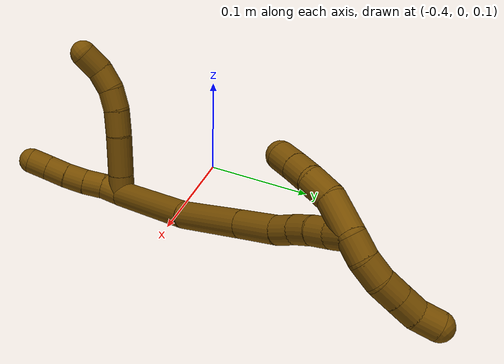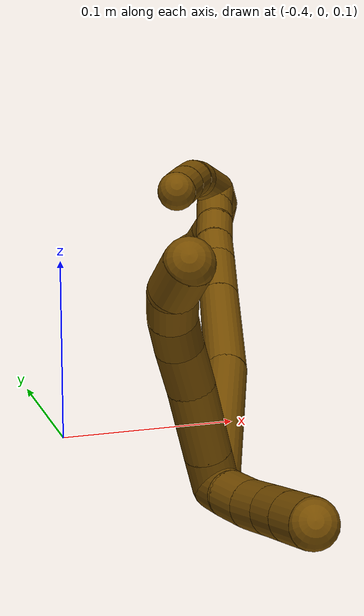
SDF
<sdf version="1.7">
 <world name="default">
  <model name="12">
   <static>0</static>
   <link name="12">
    <collision name="collision-cylinder-e_1_2_8">
     <pose>-0.002297 0.007628 0.007002 -0.828193 -0.218302 0.096254</pose>
     <geometry><cylinder><radius>0.0125</radius><length>0.021212</length></cylinder></geometry>
     <surface>
      <friction><ode><mu>1.16</mu><mu2>1.16</mu2><slip1>0</slip1><slip2>0</slip2></ode></friction>
      <contact><ode><kp>1e+06</kp><kd>1</kd><max_vel>0</max_vel><min_depth>0.001</min_depth></ode></contact>
     </surface>
    </collision>
    <visual name="visual-cylinder-e_1_2_8">
     <pose>-0.002297 0.007628 0.007002 -0.828193 -0.218302 0.096254</pose>
     <geometry><cylinder><radius>0.0125</radius><length>0.021212</length></cylinder></geometry>
     <material><ambient>0.466667 0.301961 0 1</ambient></material>
    </visual>
    <collision name="collision-cylinder-e_2_8_9">
     <pose>-0.008814 0.029814 0.027231 -0.833239 -0.211358 0.093812</pose>
     <geometry><cylinder><radius>0.0125</radius><length>0.040234</length></cylinder></geometry>
     <surface>
      <friction><ode><mu>1.16</mu><mu2>1.16</mu2><slip1>0</slip1><slip2>0</slip2></ode></friction>
      <contact><ode><kp>1e+06</kp><kd>1</kd><max_vel>0</max_vel><min_depth>0.001</min_depth></ode></contact>
     </surface>
    </collision>
    <visual name="visual-cylinder-e_2_8_9">
     <pose>-0.008814 0.029814 0.027231 -0.833239 -0.211358 0.093812</pose>
     <geometry><cylinder><radius>0.0125</radius><length>0.040234</length></cylinder></geometry>
     <material><ambient>0.466667 0.301961 0 1</ambient></material>
    </visual>
    <collision name="collision-cylinder-e_3_9_10">
     <pose>-0.015961 0.052554 0.049472 -0.737046 -0.235927 0.091468</pose>
     <geometry><cylinder><radius>0.0125</radius><length>0.025041</length></cylinder></geometry>
     <surface>
      <friction><ode><mu>1.16</mu><mu2>1.16</mu2><slip1>0</slip1><slip2>0</slip2></ode></friction>
      <contact><ode><kp>1e+06</kp><kd>1</kd><max_vel>0</max_vel><min_depth>0.001</min_depth></ode></contact>
     </surface>
    </collision>
    <visual name="visual-cylinder-e_3_9_10">
     <pose>-0.015961 0.052554 0.049472 -0.737046 -0.235927 0.091468</pose>
     <geometry><cylinder><radius>0.0125</radius><length>0.025041</length></cylinder></geometry>
     <material><ambient>0.466667 0.301961 0 1</ambient></material>
    </visual>
    <collision name="collision-cylinder-e_4_10_11">
     <pose>-0.020477 0.065946 0.067193 -0.539286 -0.155344 0.043013</pose>
     <geometry><cylinder><radius>0.0125</radius><length>0.02054</length></cylinder></geometry>
     <surface>
      <friction><ode><mu>1.16</mu><mu2>1.16</mu2><slip1>0</slip1><slip2>0</slip2></ode></friction>
      <contact><ode><kp>1e+06</kp><kd>1</kd><max_vel>0</max_vel><min_depth>0.001</min_depth></ode></contact>
     </surface>
    </collision>
    <visual name="visual-cylinder-e_4_10_11">
     <pose>-0.020477 0.065946 0.067193 -0.539286 -0.155344 0.043013</pose>
     <geometry><cylinder><radius>0.0125</radius><length>0.02054</length></cylinder></geometry>
     <material><ambient>0.466667 0.301961 0 1</ambient></material>
    </visual>
    <collision name="collision-cylinder-e_5_11_12">
     <pose>-0.021939 0.07449 0.085734 -0.326814 0.012249 -0.00202</pose>
     <geometry><cylinder><radius>0.0125</radius><length>0.020771</length></cylinder></geometry>
     <surface>
      <friction><ode><mu>1.16</mu><mu2>1.16</mu2><slip1>0</slip1><slip2>0</slip2></ode></friction>
      <contact><ode><kp>1e+06</kp><kd>1</kd><max_vel>0</max_vel><min_depth>0.001</min_depth></ode></contact>
     </surface>
    </collision>
    <visual name="visual-cylinder-e_5_11_12">
     <pose>-0.021939 0.07449 0.085734 -0.326814 0.012249 -0.00202</pose>
     <geometry><cylinder><radius>0.0125</radius><length>0.020771</length></cylinder></geometry>
     <material><ambient>0.466667 0.301961 0 1</ambient></material>
    </visual>
    <collision name="collision-cylinder-e_6_12_6">
     <pose>-0.018126 0.081487 0.105379 -0.35743 0.338447 -0.061709</pose>
     <geometry><cylinder><radius>0.0125</radius><length>0.022201</length></cylinder></geometry>
     <surface>
      <friction><ode><mu>1.16</mu><mu2>1.16</mu2><slip1>0</slip1><slip2>0</slip2></ode></friction>
      <contact><ode><kp>1e+06</kp><kd>1</kd><max_vel>0</max_vel><min_depth>0.001</min_depth></ode></contact>
     </surface>
    </collision>
    <visual name="visual-cylinder-e_6_12_6">
     <pose>-0.018126 0.081487 0.105379 -0.35743 0.338447 -0.061709</pose>
     <geometry><cylinder><radius>0.0125</radius><length>0.022201</length></cylinder></geometry>
     <material><ambient>0.466667 0.301961 0 1</ambient></material>
    </visual>
    <collision name="collision-cylinder-e_1_2_13">
     <pose>0.003234 -0.003255 0.008885 0.351209 0.329325 0.05895</pose>
     <geometry><cylinder><radius>0.0125</radius><length>0.02</length></cylinder></geometry>
     <surface>
      <friction><ode><mu>1.16</mu><mu2>1.16</mu2><slip1>0</slip1><slip2>0</slip2></ode></friction>
      <contact><ode><kp>1e+06</kp><kd>1</kd><max_vel>0</max_vel><min_depth>0.001</min_depth></ode></contact>
     </surface>
    </collision>
    <visual name="visual-cylinder-e_1_2_13">
     <pose>0.003234 -0.003255 0.008885 0.351209 0.329325 0.05895</pose>
     <geometry><cylinder><radius>0.0125</radius><length>0.02</length></cylinder></geometry>
     <material><ambient>0.466667 0.301961 0 1</ambient></material>
    </visual>
    <collision name="collision-cylinder-e_2_13_14">
     <pose>0.011209 -0.010087 0.025816 0.418265 0.493917 0.106909</pose>
     <geometry><cylinder><radius>0.0125</radius><length>0.02</length></cylinder></geometry>
     <surface>
      <friction><ode><mu>1.16</mu><mu2>1.16</mu2><slip1>0</slip1><slip2>0</slip2></ode></friction>
      <contact><ode><kp>1e+06</kp><kd>1</kd><max_vel>0</max_vel><min_depth>0.001</min_depth></ode></contact>
     </surface>
    </collision>
    <visual name="visual-cylinder-e_2_13_14">
     <pose>0.011209 -0.010087 0.025816 0.418265 0.493917 0.106909</pose>
     <geometry><cylinder><radius>0.0125</radius><length>0.02</length></cylinder></geometry>
     <material><ambient>0.466667 0.301961 0 1</ambient></material>
    </visual>
    <collision name="collision-cylinder-e_3_14_15">
     <pose>0.020461 -0.01623 0.042409 0.291714 0.467994 0.070003</pose>
     <geometry><cylinder><radius>0.0125</radius><length>0.02</length></cylinder></geometry>
     <surface>
      <friction><ode><mu>1.16</mu><mu2>1.16</mu2><slip1>0</slip1><slip2>0</slip2></ode></friction>
      <contact><ode><kp>1e+06</kp><kd>1</kd><max_vel>0</max_vel><min_depth>0.001</min_depth></ode></contact>
     </surface>
    </collision>
    <visual name="visual-cylinder-e_3_14_15">
     <pose>0.020461 -0.01623 0.042409 0.291714 0.467994 0.070003</pose>
     <geometry><cylinder><radius>0.0125</radius><length>0.02</length></cylinder></geometry>
     <material><ambient>0.466667 0.301961 0 1</ambient></material>
    </visual>
    <collision name="collision-cylinder-e_4_15_16">
     <pose>0.028673 -0.021309 0.059901 0.273823 0.37913 0.052856</pose>
     <geometry><cylinder><radius>0.0125</radius><length>0.02</length></cylinder></geometry>
     <surface>
      <friction><ode><mu>1.16</mu><mu2>1.16</mu2><slip1>0</slip1><slip2>0</slip2></ode></friction>
      <contact><ode><kp>1e+06</kp><kd>1</kd><max_vel>0</max_vel><min_depth>0.001</min_depth></ode></contact>
     </surface>
    </collision>
    <visual name="visual-cylinder-e_4_15_16">
     <pose>0.028673 -0.021309 0.059901 0.273823 0.37913 0.052856</pose>
     <geometry><cylinder><radius>0.0125</radius><length>0.02</length></cylinder></geometry>
     <material><ambient>0.466667 0.301961 0 1</ambient></material>
    </visual>
    <collision name="collision-cylinder-e_5_16_5">
     <pose>0.036185 -0.026308 0.077749 0.272359 0.390987 0.054256</pose>
     <geometry><cylinder><radius>0.0125</radius><length>0.02</length></cylinder></geometry>
     <surface>
      <friction><ode><mu>1.16</mu><mu2>1.16</mu2><slip1>0</slip1><slip2>0</slip2></ode></friction>
      <contact><ode><kp>1e+06</kp><kd>1</kd><max_vel>0</max_vel><min_depth>0.001</min_depth></ode></contact>
     </surface>
    </collision>
    <visual name="visual-cylinder-e_5_16_5">
     <pose>0.036185 -0.026308 0.077749 0.272359 0.390987 0.054256</pose>
     <geometry><cylinder><radius>0.0125</radius><length>0.02</length></cylinder></geometry>
     <material><ambient>0.466667 0.301961 0 1</ambient></material>
    </visual>
    <collision name="collision-cylinder-e_1_2_17">
     <pose>0.004819 0.038598 -0.03402 -2.29323 0.093398 -0.206233</pose>
     <geometry><cylinder><radius>0.0125</radius><length>0.103352</length></cylinder></geometry>
     <surface>
      <friction><ode><mu>1.16</mu><mu2>1.16</mu2><slip1>0</slip1><slip2>0</slip2></ode></friction>
      <contact><ode><kp>1e+06</kp><kd>1</kd><max_vel>0</max_vel><min_depth>0.001</min_depth></ode></contact>
     </surface>
    </collision>
    <visual name="visual-cylinder-e_1_2_17">
     <pose>0.004819 0.038598 -0.03402 -2.29323 0.093398 -0.206233</pose>
     <geometry><cylinder><radius>0.0125</radius><length>0.103352</length></cylinder></geometry>
     <material><ambient>0.466667 0.301961 0 1</ambient></material>
    </visual>
    <collision name="collision-cylinder-e_2_17_18">
     <pose>0.009071 0.106223 -0.09097 -2.2394 -0.015361 0.031709</pose>
     <geometry><cylinder><radius>0.0125</radius><length>0.073989</length></cylinder></geometry>
     <surface>
      <friction><ode><mu>1.16</mu><mu2>1.16</mu2><slip1>0</slip1><slip2>0</slip2></ode></friction>
      <contact><ode><kp>1e+06</kp><kd>1</kd><max_vel>0</max_vel><min_depth>0.001</min_depth></ode></contact>
     </surface>
    </collision>
    <visual name="visual-cylinder-e_2_17_18">
     <pose>0.009071 0.106223 -0.09097 -2.2394 -0.015361 0.031709</pose>
     <geometry><cylinder><radius>0.0125</radius><length>0.073989</length></cylinder></geometry>
     <material><ambient>0.466667 0.301961 0 1</ambient></material>
    </visual>
    <collision name="collision-cylinder-e_3_18_19">
     <pose>0.008316 0.151477 -0.126776 -2.24154 -0.009004 0.018639</pose>
     <geometry><cylinder><radius>0.0125</radius><length>0.041435</length></cylinder></geometry>
     <surface>
      <friction><ode><mu>1.16</mu><mu2>1.16</mu2><slip1>0</slip1><slip2>0</slip2></ode></friction>
      <contact><ode><kp>1e+06</kp><kd>1</kd><max_vel>0</max_vel><min_depth>0.001</min_depth></ode></contact>
     </surface>
    </collision>
    <visual name="visual-cylinder-e_3_18_19">
     <pose>0.008316 0.151477 -0.126776 -2.24154 -0.009004 0.018639</pose>
     <geometry><cylinder><radius>0.0125</radius><length>0.041435</length></cylinder></geometry>
     <material><ambient>0.466667 0.301961 0 1</ambient></material>
    </visual>
    <collision name="collision-cylinder-e_4_19_20">
     <pose>0.007717 0.176742 -0.144777 -2.08662 -0.039614 0.067984</pose>
     <geometry><cylinder><radius>0.0125</radius><length>0.020793</length></cylinder></geometry>
     <surface>
      <friction><ode><mu>1.16</mu><mu2>1.16</mu2><slip1>0</slip1><slip2>0</slip2></ode></friction>
      <contact><ode><kp>1e+06</kp><kd>1</kd><max_vel>0</max_vel><min_depth>0.001</min_depth></ode></contact>
     </surface>
    </collision>
    <visual name="visual-cylinder-e_4_19_20">
     <pose>0.007717 0.176742 -0.144777 -2.08662 -0.039614 0.067984</pose>
     <geometry><cylinder><radius>0.0125</radius><length>0.020793</length></cylinder></geometry>
     <material><ambient>0.466667 0.301961 0 1</ambient></material>
    </visual>
    <collision name="collision-cylinder-e_5_20_21">
     <pose>0.007851 0.19444 -0.155063 -2.10822 0.054037 -0.095059</pose>
     <geometry><cylinder><radius>0.0125</radius><length>0.020195</length></cylinder></geometry>
     <surface>
      <friction><ode><mu>1.16</mu><mu2>1.16</mu2><slip1>0</slip1><slip2>0</slip2></ode></friction>
      <contact><ode><kp>1e+06</kp><kd>1</kd><max_vel>0</max_vel><min_depth>0.001</min_depth></ode></contact>
     </surface>
    </collision>
    <visual name="visual-cylinder-e_5_20_21">
     <pose>0.007851 0.19444 -0.155063 -2.10822 0.054037 -0.095059</pose>
     <geometry><cylinder><radius>0.0125</radius><length>0.020195</length></cylinder></geometry>
     <material><ambient>0.466667 0.301961 0 1</ambient></material>
    </visual>
    <collision name="collision-cylinder-e_6_21_22">
     <pose>0.008601 0.211094 -0.16638 -2.22707 0.020241 -0.041132</pose>
     <geometry><cylinder><radius>0.0125</radius><length>0.020182</length></cylinder></geometry>
     <surface>
      <friction><ode><mu>1.16</mu><mu2>1.16</mu2><slip1>0</slip1><slip2>0</slip2></ode></friction>
      <contact><ode><kp>1e+06</kp><kd>1</kd><max_vel>0</max_vel><min_depth>0.001</min_depth></ode></contact>
     </surface>
    </collision>
    <visual name="visual-cylinder-e_6_21_22">
     <pose>0.008601 0.211094 -0.16638 -2.22707 0.020241 -0.041132</pose>
     <geometry><cylinder><radius>0.0125</radius><length>0.020182</length></cylinder></geometry>
     <material><ambient>0.466667 0.301961 0 1</ambient></material>
    </visual>
    <collision name="collision-cylinder-e_7_22_1">
     <pose>0.009771 0.227575 -0.177787 -2.12486 0.096514 -0.172911</pose>
     <geometry><cylinder><radius>0.0125</radius><length>0.020054</length></cylinder></geometry>
     <surface>
      <friction><ode><mu>1.16</mu><mu2>1.16</mu2><slip1>0</slip1><slip2>0</slip2></ode></friction>
      <contact><ode><kp>1e+06</kp><kd>1</kd><max_vel>0</max_vel><min_depth>0.001</min_depth></ode></contact>
     </surface>
    </collision>
    <visual name="visual-cylinder-e_7_22_1">
     <pose>0.009771 0.227575 -0.177787 -2.12486 0.096514 -0.172911</pose>
     <geometry><cylinder><radius>0.0125</radius><length>0.020054</length></cylinder></geometry>
     <material><ambient>0.466667 0.301961 0 1</ambient></material>
    </visual>
    <collision name="collision-cylinder-e_1_1_23">
     <pose>0.012445 0.234504 -0.192768 2.98278 0.171547 1.64818</pose>
     <geometry><cylinder><radius>0.0125</radius><length>0.02</length></cylinder></geometry>
     <surface>
      <friction><ode><mu>1.16</mu><mu2>1.16</mu2><slip1>0</slip1><slip2>0</slip2></ode></friction>
      <contact><ode><kp>1e+06</kp><kd>1</kd><max_vel>0</max_vel><min_depth>0.001</min_depth></ode></contact>
     </surface>
    </collision>
    <visual name="visual-cylinder-e_1_1_23">
     <pose>0.012445 0.234504 -0.192768 2.98278 0.171547 1.64818</pose>
     <geometry><cylinder><radius>0.0125</radius><length>0.02</length></cylinder></geometry>
     <material><ambient>0.466667 0.301961 0 1</ambient></material>
    </visual>
    <collision name="collision-cylinder-e_2_23_24">
     <pose>0.013273 0.230891 -0.212244 2.93381 -0.087936 -0.798591</pose>
     <geometry><cylinder><radius>0.0125</radius><length>0.02</length></cylinder></geometry>
     <surface>
      <friction><ode><mu>1.16</mu><mu2>1.16</mu2><slip1>0</slip1><slip2>0</slip2></ode></friction>
      <contact><ode><kp>1e+06</kp><kd>1</kd><max_vel>0</max_vel><min_depth>0.001</min_depth></ode></contact>
     </surface>
    </collision>
    <visual name="visual-cylinder-e_2_23_24">
     <pose>0.013273 0.230891 -0.212244 2.93381 -0.087936 -0.798591</pose>
     <geometry><cylinder><radius>0.0125</radius><length>0.02</length></cylinder></geometry>
     <material><ambient>0.466667 0.301961 0 1</ambient></material>
    </visual>
    <collision name="collision-cylinder-e_3_24_25">
     <pose>0.009158 0.226553 -0.231173 2.89796 -0.329709 -1.87278</pose>
     <geometry><cylinder><radius>0.0125</radius><length>0.02</length></cylinder></geometry>
     <surface>
      <friction><ode><mu>1.16</mu><mu2>1.16</mu2><slip1>0</slip1><slip2>0</slip2></ode></friction>
      <contact><ode><kp>1e+06</kp><kd>1</kd><max_vel>0</max_vel><min_depth>0.001</min_depth></ode></contact>
     </surface>
    </collision>
    <visual name="visual-cylinder-e_3_24_25">
     <pose>0.009158 0.226553 -0.231173 2.89796 -0.329709 -1.87278</pose>
     <geometry><cylinder><radius>0.0125</radius><length>0.02</length></cylinder></geometry>
     <material><ambient>0.466667 0.301961 0 1</ambient></material>
    </visual>
    <collision name="collision-cylinder-e_4_25_26">
     <pose>0.00266 0.222048 -0.249544 2.90425 -0.332084 -1.90484</pose>
     <geometry><cylinder><radius>0.0125</radius><length>0.02</length></cylinder></geometry>
     <surface>
      <friction><ode><mu>1.16</mu><mu2>1.16</mu2><slip1>0</slip1><slip2>0</slip2></ode></friction>
      <contact><ode><kp>1e+06</kp><kd>1</kd><max_vel>0</max_vel><min_depth>0.001</min_depth></ode></contact>
     </surface>
    </collision>
    <visual name="visual-cylinder-e_4_25_26">
     <pose>0.00266 0.222048 -0.249544 2.90425 -0.332084 -1.90484</pose>
     <geometry><cylinder><radius>0.0125</radius><length>0.02</length></cylinder></geometry>
     <material><ambient>0.466667 0.301961 0 1</ambient></material>
    </visual>
    <collision name="collision-cylinder-e_5_26_4">
     <pose>-0.00483 0.220414 -0.267775 -3.07656 -0.436701 2.85049</pose>
     <geometry><cylinder><radius>0.0125</radius><length>0.02</length></cylinder></geometry>
     <surface>
      <friction><ode><mu>1.16</mu><mu2>1.16</mu2><slip1>0</slip1><slip2>0</slip2></ode></friction>
      <contact><ode><kp>1e+06</kp><kd>1</kd><max_vel>0</max_vel><min_depth>0.001</min_depth></ode></contact>
     </surface>
    </collision>
    <visual name="visual-cylinder-e_5_26_4">
     <pose>-0.00483 0.220414 -0.267775 -3.07656 -0.436701 2.85049</pose>
     <geometry><cylinder><radius>0.0125</radius><length>0.02</length></cylinder></geometry>
     <material><ambient>0.466667 0.301961 0 1</ambient></material>
    </visual>
    <collision name="collision-cylinder-e_1_1_27">
     <pose>0.004092 0.233895 -0.166976 0.134081 -0.389118 -0.026459</pose>
     <geometry><cylinder><radius>0.0125</radius><length>0.035036</length></cylinder></geometry>
     <surface>
      <friction><ode><mu>1.16</mu><mu2>1.16</mu2><slip1>0</slip1><slip2>0</slip2></ode></friction>
      <contact><ode><kp>1e+06</kp><kd>1</kd><max_vel>0</max_vel><min_depth>0.001</min_depth></ode></contact>
     </surface>
    </collision>
    <visual name="visual-cylinder-e_1_1_27">
     <pose>0.004092 0.233895 -0.166976 0.134081 -0.389118 -0.026459</pose>
     <geometry><cylinder><radius>0.0125</radius><length>0.035036</length></cylinder></geometry>
     <material><ambient>0.466667 0.301961 0 1</ambient></material>
    </visual>
    <collision name="collision-cylinder-e_2_27_28">
     <pose>-0.004602 0.227586 -0.139814 0.357271 -0.171185 -0.030982</pose>
     <geometry><cylinder><radius>0.0125</radius><length>0.024044</length></cylinder></geometry>
     <surface>
      <friction><ode><mu>1.16</mu><mu2>1.16</mu2><slip1>0</slip1><slip2>0</slip2></ode></friction>
      <contact><ode><kp>1e+06</kp><kd>1</kd><max_vel>0</max_vel><min_depth>0.001</min_depth></ode></contact>
     </surface>
    </collision>
    <visual name="visual-cylinder-e_2_27_28">
     <pose>-0.004602 0.227586 -0.139814 0.357271 -0.171185 -0.030982</pose>
     <geometry><cylinder><radius>0.0125</radius><length>0.024044</length></cylinder></geometry>
     <material><ambient>0.466667 0.301961 0 1</ambient></material>
    </visual>
    <collision name="collision-cylinder-e_3_28_29">
     <pose>-0.00954 0.218142 -0.120475 0.571588 -0.286832 -0.084814</pose>
     <geometry><cylinder><radius>0.0125</radius><length>0.020432</length></cylinder></geometry>
     <surface>
      <friction><ode><mu>1.16</mu><mu2>1.16</mu2><slip1>0</slip1><slip2>0</slip2></ode></friction>
      <contact><ode><kp>1e+06</kp><kd>1</kd><max_vel>0</max_vel><min_depth>0.001</min_depth></ode></contact>
     </surface>
    </collision>
    <visual name="visual-cylinder-e_3_28_29">
     <pose>-0.00954 0.218142 -0.120475 0.571588 -0.286832 -0.084814</pose>
     <geometry><cylinder><radius>0.0125</radius><length>0.020432</length></cylinder></geometry>
     <material><ambient>0.466667 0.301961 0 1</ambient></material>
    </visual>
    <collision name="collision-cylinder-e_4_29_3">
     <pose>-0.015188 0.207328 -0.104052 0.592993 -0.272522 -0.083726</pose>
     <geometry><cylinder><radius>0.0125</radius><length>0.020488</length></cylinder></geometry>
     <surface>
      <friction><ode><mu>1.16</mu><mu2>1.16</mu2><slip1>0</slip1><slip2>0</slip2></ode></friction>
      <contact><ode><kp>1e+06</kp><kd>1</kd><max_vel>0</max_vel><min_depth>0.001</min_depth></ode></contact>
     </surface>
    </collision>
    <visual name="visual-cylinder-e_4_29_3">
     <pose>-0.015188 0.207328 -0.104052 0.592993 -0.272522 -0.083726</pose>
     <geometry><cylinder><radius>0.0125</radius><length>0.020488</length></cylinder></geometry>
     <material><ambient>0.466667 0.301961 0 1</ambient></material>
    </visual>
    <collision name="collision-sphere-3">
     <pose>-0.017945 0.201814 -0.095871 0 -0 0</pose>
     <geometry><sphere><radius>0.0125</radius></sphere></geometry>
     <surface>
      <friction><ode><mu>1.16</mu><mu2>1.16</mu2><slip1>0</slip1><slip2>0</slip2></ode></friction>
      <contact><ode><kp>1e+06</kp><kd>1</kd><max_vel>0</max_vel><min_depth>0.001</min_depth></ode></contact>
     </surface>
    </collision>
    <visual name="visual-sphere-3">
     <pose>-0.017945 0.201814 -0.095871 0 -0 0</pose>
     <geometry><sphere><radius>0.0125</radius></sphere></geometry>
     <material><ambient>0.466667 0.301961 0 1</ambient></material>
    </visual>
    <collision name="collision-sphere-29">
     <pose>-0.012431 0.212841 -0.112234 0 -0 0</pose>
     <geometry><sphere><radius>0.0125</radius></sphere></geometry>
     <surface>
      <friction><ode><mu>1.16</mu><mu2>1.16</mu2><slip1>0</slip1><slip2>0</slip2></ode></friction>
      <contact><ode><kp>1e+06</kp><kd>1</kd><max_vel>0</max_vel><min_depth>0.001</min_depth></ode></contact>
     </surface>
    </collision>
    <visual name="visual-sphere-29">
     <pose>-0.012431 0.212841 -0.112234 0 -0 0</pose>
     <geometry><sphere><radius>0.0125</radius></sphere></geometry>
     <material><ambient>0.466667 0.301961 0 1</ambient></material>
    </visual>
    <collision name="collision-sphere-28">
     <pose>-0.00665 0.223443 -0.128716 0 -0 0</pose>
     <geometry><sphere><radius>0.0125</radius></sphere></geometry>
     <surface>
      <friction><ode><mu>1.16</mu><mu2>1.16</mu2><slip1>0</slip1><slip2>0</slip2></ode></friction>
      <contact><ode><kp>1e+06</kp><kd>1</kd><max_vel>0</max_vel><min_depth>0.001</min_depth></ode></contact>
     </surface>
    </collision>
    <visual name="visual-sphere-28">
     <pose>-0.00665 0.223443 -0.128716 0 -0 0</pose>
     <geometry><sphere><radius>0.0125</radius></sphere></geometry>
     <material><ambient>0.466667 0.301961 0 1</ambient></material>
    </visual>
    <collision name="collision-sphere-27">
     <pose>-0.002554 0.231729 -0.150913 0 -0 0</pose>
     <geometry><sphere><radius>0.0125</radius></sphere></geometry>
     <surface>
      <friction><ode><mu>1.16</mu><mu2>1.16</mu2><slip1>0</slip1><slip2>0</slip2></ode></friction>
      <contact><ode><kp>1e+06</kp><kd>1</kd><max_vel>0</max_vel><min_depth>0.001</min_depth></ode></contact>
     </surface>
    </collision>
    <visual name="visual-sphere-27">
     <pose>-0.002554 0.231729 -0.150913 0 -0 0</pose>
     <geometry><sphere><radius>0.0125</radius></sphere></geometry>
     <material><ambient>0.466667 0.301961 0 1</ambient></material>
    </visual>
    <collision name="collision-sphere-4">
     <pose>-0.00906 0.221003 -0.276817 0 -0 0</pose>
     <geometry><sphere><radius>0.0125</radius></sphere></geometry>
     <surface>
      <friction><ode><mu>1.16</mu><mu2>1.16</mu2><slip1>0</slip1><slip2>0</slip2></ode></friction>
      <contact><ode><kp>1e+06</kp><kd>1</kd><max_vel>0</max_vel><min_depth>0.001</min_depth></ode></contact>
     </surface>
    </collision>
    <visual name="visual-sphere-4">
     <pose>-0.00906 0.221003 -0.276817 0 -0 0</pose>
     <geometry><sphere><radius>0.0125</radius></sphere></geometry>
     <material><ambient>0.466667 0.301961 0 1</ambient></material>
    </visual>
    <collision name="collision-sphere-26">
     <pose>-0.0006 0.219826 -0.258732 0 -0 0</pose>
     <geometry><sphere><radius>0.0125</radius></sphere></geometry>
     <surface>
      <friction><ode><mu>1.16</mu><mu2>1.16</mu2><slip1>0</slip1><slip2>0</slip2></ode></friction>
      <contact><ode><kp>1e+06</kp><kd>1</kd><max_vel>0</max_vel><min_depth>0.001</min_depth></ode></contact>
     </surface>
    </collision>
    <visual name="visual-sphere-26">
     <pose>-0.0006 0.219826 -0.258732 0 -0 0</pose>
     <geometry><sphere><radius>0.0125</radius></sphere></geometry>
     <material><ambient>0.466667 0.301961 0 1</ambient></material>
    </visual>
    <collision name="collision-sphere-25">
     <pose>0.00592 0.224271 -0.240355 0 -0 0</pose>
     <geometry><sphere><radius>0.0125</radius></sphere></geometry>
     <surface>
      <friction><ode><mu>1.16</mu><mu2>1.16</mu2><slip1>0</slip1><slip2>0</slip2></ode></friction>
      <contact><ode><kp>1e+06</kp><kd>1</kd><max_vel>0</max_vel><min_depth>0.001</min_depth></ode></contact>
     </surface>
    </collision>
    <visual name="visual-sphere-25">
     <pose>0.00592 0.224271 -0.240355 0 -0 0</pose>
     <geometry><sphere><radius>0.0125</radius></sphere></geometry>
     <material><ambient>0.466667 0.301961 0 1</ambient></material>
    </visual>
    <collision name="collision-sphere-24">
     <pose>0.012395 0.228836 -0.221991 0 -0 0</pose>
     <geometry><sphere><radius>0.0125</radius></sphere></geometry>
     <surface>
      <friction><ode><mu>1.16</mu><mu2>1.16</mu2><slip1>0</slip1><slip2>0</slip2></ode></friction>
      <contact><ode><kp>1e+06</kp><kd>1</kd><max_vel>0</max_vel><min_depth>0.001</min_depth></ode></contact>
     </surface>
    </collision>
    <visual name="visual-sphere-24">
     <pose>0.012395 0.228836 -0.221991 0 -0 0</pose>
     <geometry><sphere><radius>0.0125</radius></sphere></geometry>
     <material><ambient>0.466667 0.301961 0 1</ambient></material>
    </visual>
    <collision name="collision-sphere-23">
     <pose>0.014152 0.232946 -0.202497 0 -0 0</pose>
     <geometry><sphere><radius>0.0125</radius></sphere></geometry>
     <surface>
      <friction><ode><mu>1.16</mu><mu2>1.16</mu2><slip1>0</slip1><slip2>0</slip2></ode></friction>
      <contact><ode><kp>1e+06</kp><kd>1</kd><max_vel>0</max_vel><min_depth>0.001</min_depth></ode></contact>
     </surface>
    </collision>
    <visual name="visual-sphere-23">
     <pose>0.014152 0.232946 -0.202497 0 -0 0</pose>
     <geometry><sphere><radius>0.0125</radius></sphere></geometry>
     <material><ambient>0.466667 0.301961 0 1</ambient></material>
    </visual>
    <collision name="collision-sphere-1">
     <pose>0.010737 0.236062 -0.183039 0 -0 0</pose>
     <geometry><sphere><radius>0.0125</radius></sphere></geometry>
     <surface>
      <friction><ode><mu>1.16</mu><mu2>1.16</mu2><slip1>0</slip1><slip2>0</slip2></ode></friction>
      <contact><ode><kp>1e+06</kp><kd>1</kd><max_vel>0</max_vel><min_depth>0.001</min_depth></ode></contact>
     </surface>
    </collision>
    <visual name="visual-sphere-1">
     <pose>0.010737 0.236062 -0.183039 0 -0 0</pose>
     <geometry><sphere><radius>0.0125</radius></sphere></geometry>
     <material><ambient>0.466667 0.301961 0 1</ambient></material>
    </visual>
    <collision name="collision-sphere-22">
     <pose>0.008805 0.219087 -0.172536 0 -0 0</pose>
     <geometry><sphere><radius>0.0125</radius></sphere></geometry>
     <surface>
      <friction><ode><mu>1.16</mu><mu2>1.16</mu2><slip1>0</slip1><slip2>0</slip2></ode></friction>
      <contact><ode><kp>1e+06</kp><kd>1</kd><max_vel>0</max_vel><min_depth>0.001</min_depth></ode></contact>
     </surface>
    </collision>
    <visual name="visual-sphere-22">
     <pose>0.008805 0.219087 -0.172536 0 -0 0</pose>
     <geometry><sphere><radius>0.0125</radius></sphere></geometry>
     <material><ambient>0.466667 0.301961 0 1</ambient></material>
    </visual>
    <collision name="collision-sphere-21">
     <pose>0.008396 0.203101 -0.160224 0 -0 0</pose>
     <geometry><sphere><radius>0.0125</radius></sphere></geometry>
     <surface>
      <friction><ode><mu>1.16</mu><mu2>1.16</mu2><slip1>0</slip1><slip2>0</slip2></ode></friction>
      <contact><ode><kp>1e+06</kp><kd>1</kd><max_vel>0</max_vel><min_depth>0.001</min_depth></ode></contact>
     </surface>
    </collision>
    <visual name="visual-sphere-21">
     <pose>0.008396 0.203101 -0.160224 0 -0 0</pose>
     <geometry><sphere><radius>0.0125</radius></sphere></geometry>
     <material><ambient>0.466667 0.301961 0 1</ambient></material>
    </visual>
    <collision name="collision-sphere-12">
     <pose>-0.021811 0.077824 0.09557 0 -0 0</pose>
     <geometry><sphere><radius>0.0125</radius></sphere></geometry>
     <surface>
      <friction><ode><mu>1.16</mu><mu2>1.16</mu2><slip1>0</slip1><slip2>0</slip2></ode></friction>
      <contact><ode><kp>1e+06</kp><kd>1</kd><max_vel>0</max_vel><min_depth>0.001</min_depth></ode></contact>
     </surface>
    </collision>
    <visual name="visual-sphere-12">
     <pose>-0.021811 0.077824 0.09557 0 -0 0</pose>
     <geometry><sphere><radius>0.0125</radius></sphere></geometry>
     <material><ambient>0.466667 0.301961 0 1</ambient></material>
    </visual>
    <collision name="collision-sphere-11">
     <pose>-0.022066 0.071156 0.075899 0 -0 0</pose>
     <geometry><sphere><radius>0.0125</radius></sphere></geometry>
     <surface>
      <friction><ode><mu>1.16</mu><mu2>1.16</mu2><slip1>0</slip1><slip2>0</slip2></ode></friction>
      <contact><ode><kp>1e+06</kp><kd>1</kd><max_vel>0</max_vel><min_depth>0.001</min_depth></ode></contact>
     </surface>
    </collision>
    <visual name="visual-sphere-11">
     <pose>-0.022066 0.071156 0.075899 0 -0 0</pose>
     <geometry><sphere><radius>0.0125</radius></sphere></geometry>
     <material><ambient>0.466667 0.301961 0 1</ambient></material>
    </visual>
    <collision name="collision-sphere-10">
     <pose>-0.018888 0.060736 0.058486 0 -0 0</pose>
     <geometry><sphere><radius>0.0125</radius></sphere></geometry>
     <surface>
      <friction><ode><mu>1.16</mu><mu2>1.16</mu2><slip1>0</slip1><slip2>0</slip2></ode></friction>
      <contact><ode><kp>1e+06</kp><kd>1</kd><max_vel>0</max_vel><min_depth>0.001</min_depth></ode></contact>
     </surface>
    </collision>
    <visual name="visual-sphere-10">
     <pose>-0.018888 0.060736 0.058486 0 -0 0</pose>
     <geometry><sphere><radius>0.0125</radius></sphere></geometry>
     <material><ambient>0.466667 0.301961 0 1</ambient></material>
    </visual>
    <collision name="collision-sphere-9">
     <pose>-0.013035 0.044371 0.040458 0 -0 0</pose>
     <geometry><sphere><radius>0.0125</radius></sphere></geometry>
     <surface>
      <friction><ode><mu>1.16</mu><mu2>1.16</mu2><slip1>0</slip1><slip2>0</slip2></ode></friction>
      <contact><ode><kp>1e+06</kp><kd>1</kd><max_vel>0</max_vel><min_depth>0.001</min_depth></ode></contact>
     </surface>
    </collision>
    <visual name="visual-sphere-9">
     <pose>-0.013035 0.044371 0.040458 0 -0 0</pose>
     <geometry><sphere><radius>0.0125</radius></sphere></geometry>
     <material><ambient>0.466667 0.301961 0 1</ambient></material>
    </visual>
    <collision name="collision-sphere-2">
     <geometry><sphere><radius>0.0125</radius></sphere></geometry>
     <surface>
      <friction><ode><mu>1.16</mu><mu2>1.16</mu2><slip1>0</slip1><slip2>0</slip2></ode></friction>
      <contact><ode><kp>1e+06</kp><kd>1</kd><max_vel>0</max_vel><min_depth>0.001</min_depth></ode></contact>
     </surface>
    </collision>
    <visual name="visual-sphere-2">
     <geometry><sphere><radius>0.0125</radius></sphere></geometry>
     <material><ambient>0.466667 0.301961 0 1</ambient></material>
    </visual>
    <collision name="collision-sphere-19">
     <pose>0.008129 0.167706 -0.139653 0 -0 0</pose>
     <geometry><sphere><radius>0.0125</radius></sphere></geometry>
     <surface>
      <friction><ode><mu>1.16</mu><mu2>1.16</mu2><slip1>0</slip1><slip2>0</slip2></ode></friction>
      <contact><ode><kp>1e+06</kp><kd>1</kd><max_vel>0</max_vel><min_depth>0.001</min_depth></ode></contact>
     </surface>
    </collision>
    <visual name="visual-sphere-19">
     <pose>0.008129 0.167706 -0.139653 0 -0 0</pose>
     <geometry><sphere><radius>0.0125</radius></sphere></geometry>
     <material><ambient>0.466667 0.301961 0 1</ambient></material>
    </visual>
    <collision name="collision-sphere-8">
     <pose>-0.004594 0.015256 0.014003 0 -0 0</pose>
     <geometry><sphere><radius>0.0125</radius></sphere></geometry>
     <surface>
      <friction><ode><mu>1.16</mu><mu2>1.16</mu2><slip1>0</slip1><slip2>0</slip2></ode></friction>
      <contact><ode><kp>1e+06</kp><kd>1</kd><max_vel>0</max_vel><min_depth>0.001</min_depth></ode></contact>
     </surface>
    </collision>
    <visual name="visual-sphere-8">
     <pose>-0.004594 0.015256 0.014003 0 -0 0</pose>
     <geometry><sphere><radius>0.0125</radius></sphere></geometry>
     <material><ambient>0.466667 0.301961 0 1</ambient></material>
    </visual>
    <collision name="collision-sphere-6">
     <pose>-0.01444 0.085151 0.115188 0 -0 0</pose>
     <geometry><sphere><radius>0.0125</radius></sphere></geometry>
     <surface>
      <friction><ode><mu>1.16</mu><mu2>1.16</mu2><slip1>0</slip1><slip2>0</slip2></ode></friction>
      <contact><ode><kp>1e+06</kp><kd>1</kd><max_vel>0</max_vel><min_depth>0.001</min_depth></ode></contact>
     </surface>
    </collision>
    <visual name="visual-sphere-6">
     <pose>-0.01444 0.085151 0.115188 0 -0 0</pose>
     <geometry><sphere><radius>0.0125</radius></sphere></geometry>
     <material><ambient>0.466667 0.301961 0 1</ambient></material>
    </visual>
    <collision name="collision-sphere-13">
     <pose>0.006468 -0.006511 0.01777 0 -0 0</pose>
     <geometry><sphere><radius>0.0125</radius></sphere></geometry>
     <surface>
      <friction><ode><mu>1.16</mu><mu2>1.16</mu2><slip1>0</slip1><slip2>0</slip2></ode></friction>
      <contact><ode><kp>1e+06</kp><kd>1</kd><max_vel>0</max_vel><min_depth>0.001</min_depth></ode></contact>
     </surface>
    </collision>
    <visual name="visual-sphere-13">
     <pose>0.006468 -0.006511 0.01777 0 -0 0</pose>
     <geometry><sphere><radius>0.0125</radius></sphere></geometry>
     <material><ambient>0.466667 0.301961 0 1</ambient></material>
    </visual>
    <collision name="collision-sphere-14">
     <pose>0.01595 -0.013664 0.033862 0 -0 0</pose>
     <geometry><sphere><radius>0.0125</radius></sphere></geometry>
     <surface>
      <friction><ode><mu>1.16</mu><mu2>1.16</mu2><slip1>0</slip1><slip2>0</slip2></ode></friction>
      <contact><ode><kp>1e+06</kp><kd>1</kd><max_vel>0</max_vel><min_depth>0.001</min_depth></ode></contact>
     </surface>
    </collision>
    <visual name="visual-sphere-14">
     <pose>0.01595 -0.013664 0.033862 0 -0 0</pose>
     <geometry><sphere><radius>0.0125</radius></sphere></geometry>
     <material><ambient>0.466667 0.301961 0 1</ambient></material>
    </visual>
    <collision name="collision-sphere-15">
     <pose>0.024972 -0.018797 0.050957 0 -0 0</pose>
     <geometry><sphere><radius>0.0125</radius></sphere></geometry>
     <surface>
      <friction><ode><mu>1.16</mu><mu2>1.16</mu2><slip1>0</slip1><slip2>0</slip2></ode></friction>
      <contact><ode><kp>1e+06</kp><kd>1</kd><max_vel>0</max_vel><min_depth>0.001</min_depth></ode></contact>
     </surface>
    </collision>
    <visual name="visual-sphere-15">
     <pose>0.024972 -0.018797 0.050957 0 -0 0</pose>
     <geometry><sphere><radius>0.0125</radius></sphere></geometry>
     <material><ambient>0.466667 0.301961 0 1</ambient></material>
    </visual>
    <collision name="collision-sphere-16">
     <pose>0.032374 -0.023821 0.068845 0 -0 0</pose>
     <geometry><sphere><radius>0.0125</radius></sphere></geometry>
     <surface>
      <friction><ode><mu>1.16</mu><mu2>1.16</mu2><slip1>0</slip1><slip2>0</slip2></ode></friction>
      <contact><ode><kp>1e+06</kp><kd>1</kd><max_vel>0</max_vel><min_depth>0.001</min_depth></ode></contact>
     </surface>
    </collision>
    <visual name="visual-sphere-16">
     <pose>0.032374 -0.023821 0.068845 0 -0 0</pose>
     <geometry><sphere><radius>0.0125</radius></sphere></geometry>
     <material><ambient>0.466667 0.301961 0 1</ambient></material>
    </visual>
    <collision name="collision-sphere-5">
     <pose>0.039996 -0.028795 0.086654 0 -0 0</pose>
     <geometry><sphere><radius>0.0125</radius></sphere></geometry>
     <surface>
      <friction><ode><mu>1.16</mu><mu2>1.16</mu2><slip1>0</slip1><slip2>0</slip2></ode></friction>
      <contact><ode><kp>1e+06</kp><kd>1</kd><max_vel>0</max_vel><min_depth>0.001</min_depth></ode></contact>
     </surface>
    </collision>
    <visual name="visual-sphere-5">
     <pose>0.039996 -0.028795 0.086654 0 -0 0</pose>
     <geometry><sphere><radius>0.0125</radius></sphere></geometry>
     <material><ambient>0.466667 0.301961 0 1</ambient></material>
    </visual>
    <collision name="collision-sphere-17">
     <pose>0.009639 0.077197 -0.06804 0 -0 0</pose>
     <geometry><sphere><radius>0.0125</radius></sphere></geometry>
     <surface>
      <friction><ode><mu>1.16</mu><mu2>1.16</mu2><slip1>0</slip1><slip2>0</slip2></ode></friction>
      <contact><ode><kp>1e+06</kp><kd>1</kd><max_vel>0</max_vel><min_depth>0.001</min_depth></ode></contact>
     </surface>
    </collision>
    <visual name="visual-sphere-17">
     <pose>0.009639 0.077197 -0.06804 0 -0 0</pose>
     <geometry><sphere><radius>0.0125</radius></sphere></geometry>
     <material><ambient>0.466667 0.301961 0 1</ambient></material>
    </visual>
    <collision name="collision-sphere-18">
     <pose>0.008502 0.135248 -0.113899 0 -0 0</pose>
     <geometry><sphere><radius>0.0125</radius></sphere></geometry>
     <surface>
      <friction><ode><mu>1.16</mu><mu2>1.16</mu2><slip1>0</slip1><slip2>0</slip2></ode></friction>
      <contact><ode><kp>1e+06</kp><kd>1</kd><max_vel>0</max_vel><min_depth>0.001</min_depth></ode></contact>
     </surface>
    </collision>
    <visual name="visual-sphere-18">
     <pose>0.008502 0.135248 -0.113899 0 -0 0</pose>
     <geometry><sphere><radius>0.0125</radius></sphere></geometry>
     <material><ambient>0.466667 0.301961 0 1</ambient></material>
    </visual>
    <collision name="collision-sphere-20">
     <pose>0.007306 0.185779 -0.149901 0 -0 0</pose>
     <geometry><sphere><radius>0.0125</radius></sphere></geometry>
     <surface>
      <friction><ode><mu>1.16</mu><mu2>1.16</mu2><slip1>0</slip1><slip2>0</slip2></ode></friction>
      <contact><ode><kp>1e+06</kp><kd>1</kd><max_vel>0</max_vel><min_depth>0.001</min_depth></ode></contact>
     </surface>
    </collision>
    <visual name="visual-sphere-20">
     <pose>0.007306 0.185779 -0.149901 0 -0 0</pose>
     <geometry><sphere><radius>0.0125</radius></sphere></geometry>
     <material><ambient>0.466667 0.301961 0 1</ambient></material>
    </visual>
    <inertial>
     <pose>0.003062 0.11394 -0.070882 0 -0 0</pose>
     <mass>0.75</mass>
     <inertia>
      <ixx>0.000154</ixx>
      <ixy>0</ixy>
      <ixz>0</ixz>
      <iyy>-6.2e-05</iyy>
      <iyz>0</iyz>
      <izz>-0.000119</izz>
     </inertia>
    </inertial>
   </link>
   <pose>-0.334744 -0.069343 0.089129 1.07542 -0.011916 -0.310892</pose>
  </model>
 </world>
</sdf>
